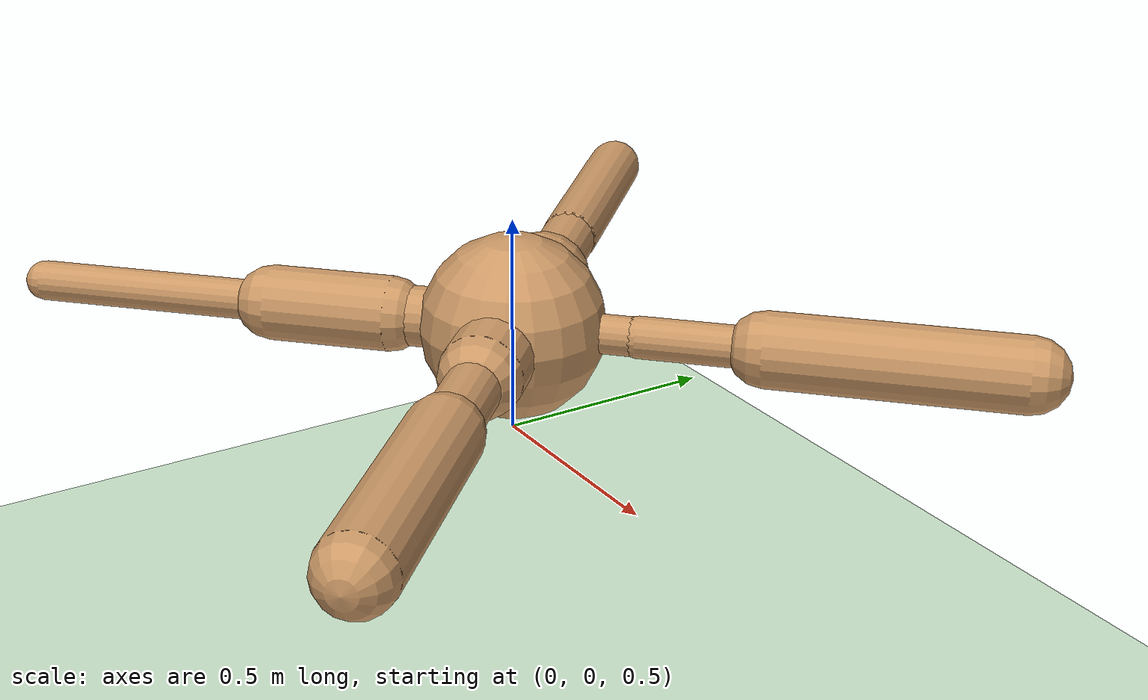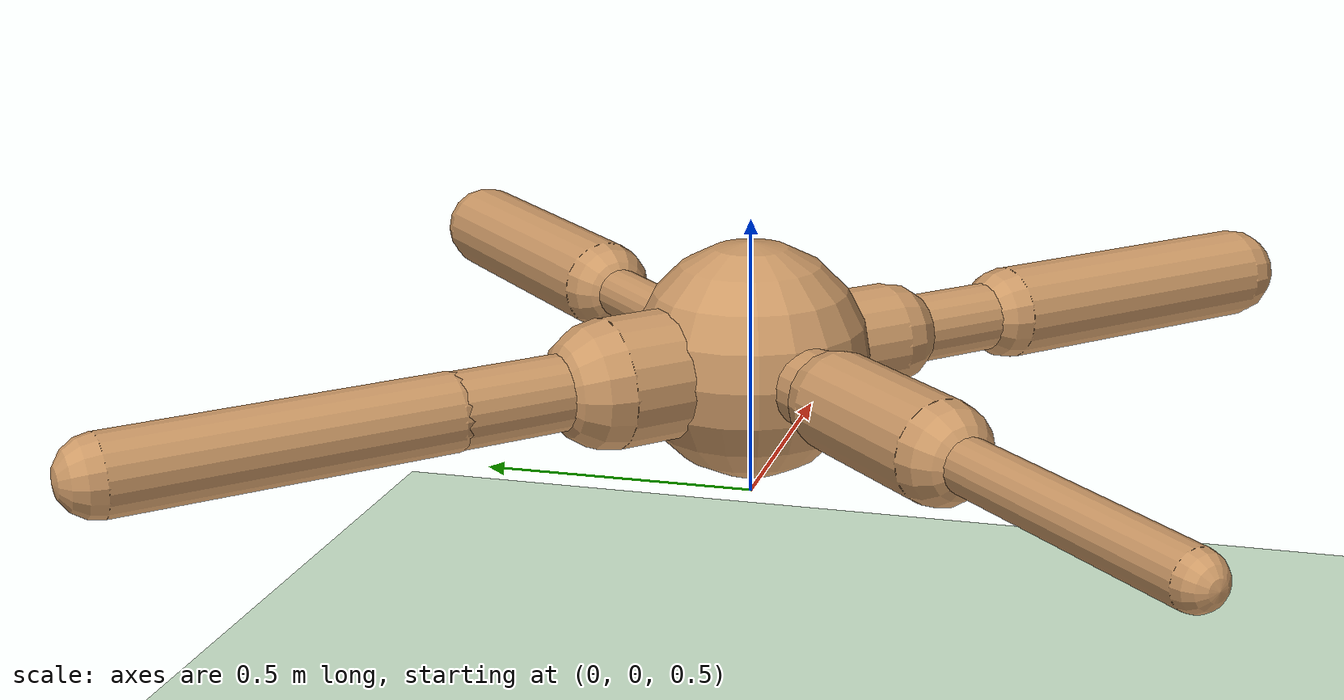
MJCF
<?xml version="1.0" encoding="utf-8"?>
<mujoco model="ant">
	<compiler angle="degree" coordinate="local" inertiafromgeom="true"></compiler>
	<option integrator="RK4" timestep="0.01"></option>
	<custom>
		<numeric data="0.0 0.0 0.55 1.0 0.0 0.0 0.0 0.0 1.0 0.0 -1.0 0.0 -1.0 0.0 1.0" name="init_qpos"></numeric>
	</custom>
	<default>
		<joint armature="1" damping="0.934728562151734" limited="true"></joint>
		<geom conaffinity="0" condim="3" density="5.0" friction="1.1271422824986128 0.5232966626905038 0.6109256976687697" margin="0.01" rgba="0.8 0.6 0.4 1"></geom>
	</default>
	<asset>
		<texture builtin="gradient" height="100" rgb1="1 1 1" rgb2="0 0 0" type="skybox" width="100"></texture>
		<texture builtin="flat" height="1278" mark="cross" markrgb="1 1 1" name="texgeom" random="0.01" rgb1="0.8 0.6 0.4" rgb2="0.8 0.6 0.4" type="cube" width="127"></texture>
		<texture builtin="checker" height="100" name="texplane" rgb1="0 0 0" rgb2="0.8 0.8 0.8" type="2d" width="100"></texture>
		<material name="MatPlane" reflectance="0.5" shininess="1" specular="1" texrepeat="60 60" texture="texplane"></material>
		<material name="geom" texture="texgeom" texuniform="true"></material>
	</asset>
	<worldbody>
		<light cutoff="100" diffuse="1 1 1" dir="-0 0 -1.3" directional="true" exponent="1" pos="0 0 1.3" specular=".1 .1 .1"></light>
		<geom conaffinity="1" condim="3" material="MatPlane" name="floor" pos="0 0 0" rgba="0.8 0.9 0.8 1" size="48.102038290179046 33.5616817370635 39.902734406034945" type="plane"></geom>
		<body name="torso" pos="0 0 0.75">
			<camera name="track" mode="trackcom" pos="0 -3 0.3" xyaxes="1 0 0 0 0 1"></camera>
			<geom name="torso_geom" pos="0 0 0" size="0.2110969679947354" type="sphere"></geom>
			<joint armature="0" damping="0.0" limited="false" margin="0.01" name="root" pos="0 0 0" type="free"></joint>
			<body name="front_left_leg" pos="0 0 0">
				<geom fromto="0.0 0.0 0.0 0.2 0.2 0.0" name="aux_1_geom" size="0.044579291575516385" type="capsule"></geom>
				<body name="aux_1" pos="0.2 0.2 0">
					<joint axis="0 0 1" name="hip_1" pos="0.0 0.0 0.0" range="-30 30" type="hinge"></joint>
					<geom fromto="0.0 0.0 0.0 0.2 0.2 0.0" name="left_leg_geom" size="0.04738358285833357" type="capsule"></geom>
					<body pos="0.2 0.2 0">
						<joint axis="-1 1 0" name="ankle_1" pos="0.0 0.0 0.0" range="30 70" type="hinge"></joint>
						<geom fromto="0.0 0.0 0.0 0.4 0.4 0.0" name="left_ankle_geom" size="0.08575105683306698" type="capsule"></geom>
					</body>
				</body>
			</body>
			<body name="front_right_leg" pos="0 0 0">
				<geom fromto="0.0 0.0 0.0 -0.2 0.2 0.0" name="aux_2_geom" size="0.11380214784543821" type="capsule"></geom>
				<body name="aux_2" pos="-0.2 0.2 0">
					<joint axis="0 0 1" name="hip_2" pos="0.0 0.0 0.0" range="-30 30" type="hinge"></joint>
					<geom fromto="0.0 0.0 0.0 -0.2 0.2 0.0" name="right_leg_geom" size="0.0659054331018731" type="capsule"></geom>
					<body pos="-0.2 0.2 0">
						<joint axis="1 1 0" name="ankle_2" pos="0.0 0.0 0.0" range="-70 -30" type="hinge"></joint>
						<geom fromto="0.0 0.0 0.0 -0.4 0.4 0.0" name="right_ankle_geom" size="0.06762085548564925" type="capsule"></geom>
					</body>
				</body>
			</body>
			<body name="back_leg" pos="0 0 0">
				<geom fromto="0.0 0.0 0.0 -0.2 -0.2 0.0" name="aux_3_geom" size="0.06903270309580938" type="capsule"></geom>
				<body name="aux_3" pos="-0.2 -0.2 0">
					<joint axis="0 0 1" name="hip_3" pos="0.0 0.0 0.0" range="-30 30" type="hinge"></joint>
					<geom fromto="0.0 0.0 0.0 -0.2 -0.2 0.0" name="back_leg_geom" size="0.0861887261316221" type="capsule"></geom>
					<body pos="-0.2 -0.2 0">
						<joint axis="-1 1 0" name="ankle_3" pos="0.0 0.0 0.0" range="-70 -30" type="hinge"></joint>
						<geom fromto="0.0 0.0 0.0 -0.4 -0.4 0.0" name="third_ankle_geom" size="0.046210823350674175" type="capsule"></geom>
					</body>
				</body>
			</body>
			<body name="right_back_leg" pos="0 0 0">
				<geom fromto="0.0 0.0 0.0 0.2 -0.2 0.0" name="aux_4_geom" size="0.09449571189708547" type="capsule"></geom>
				<body name="aux_4" pos="0.2 -0.2 0">
					<joint axis="0 0 1" name="hip_4" pos="0.0 0.0 0.0" range="-30 30" type="hinge"></joint>
					<geom fromto="0.0 0.0 0.0 0.2 -0.2 0.0" name="rightback_leg_geom" size="0.06298856074111261" type="capsule"></geom>
					<body pos="0.2 -0.2 0">
						<joint axis="1 1 0" name="ankle_4" pos="0.0 0.0 0.0" range="30 70" type="hinge"></joint>
						<geom fromto="0.0 0.0 0.0 0.4 -0.4 0.0" name="fourth_ankle_geom" size="0.0857602721474509" type="capsule"></geom>
					</body>
				</body>
			</body>
		</body>
	</worldbody>
	<actuator>
		<motor ctrllimited="true" ctrlrange="-1.0 1.0" joint="hip_4" gear="150"></motor>
		<motor ctrllimited="true" ctrlrange="-1.0 1.0" joint="ankle_4" gear="150"></motor>
		<motor ctrllimited="true" ctrlrange="-1.0 1.0" joint="hip_1" gear="150"></motor>
		<motor ctrllimited="true" ctrlrange="-1.0 1.0" joint="ankle_1" gear="150"></motor>
		<motor ctrllimited="true" ctrlrange="-1.0 1.0" joint="hip_2" gear="150"></motor>
		<motor ctrllimited="true" ctrlrange="-1.0 1.0" joint="ankle_2" gear="150"></motor>
		<motor ctrllimited="true" ctrlrange="-1.0 1.0" joint="hip_3" gear="150"></motor>
		<motor ctrllimited="true" ctrlrange="-1.0 1.0" joint="ankle_3" gear="150"></motor>
	</actuator>
</mujoco>
